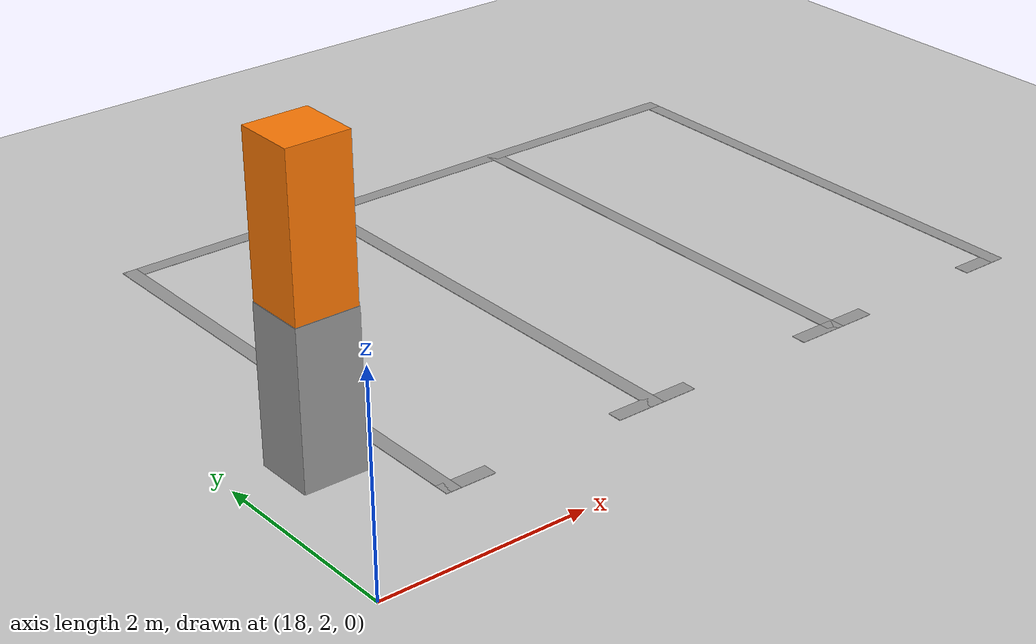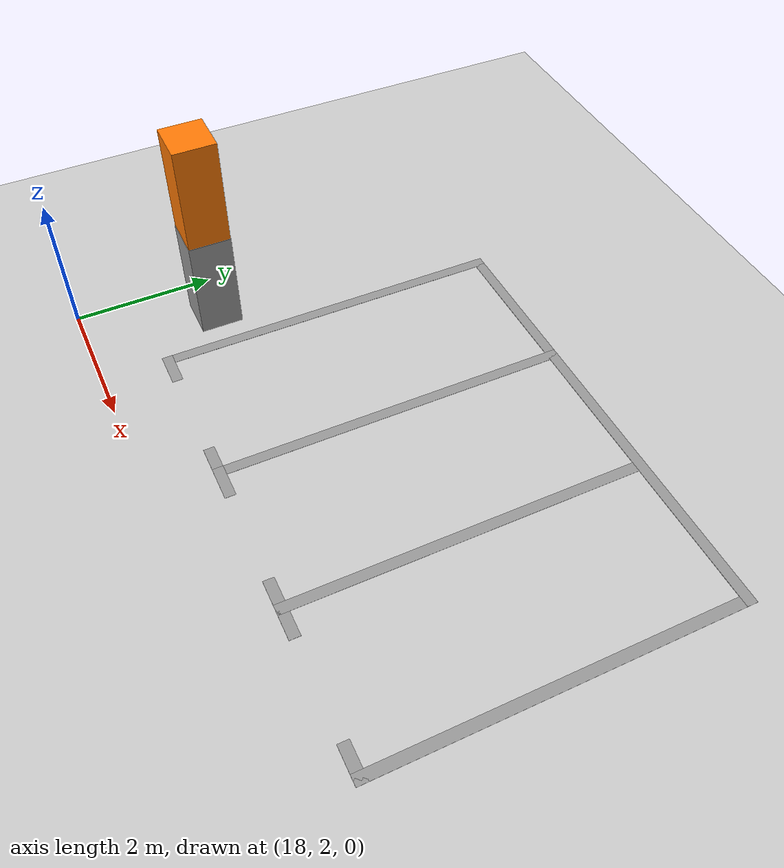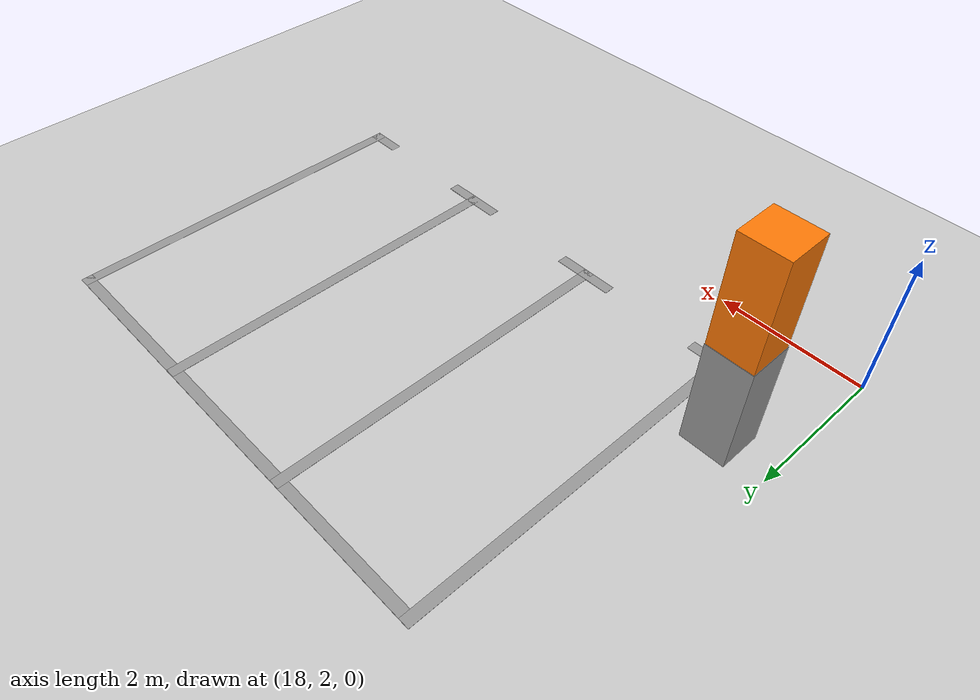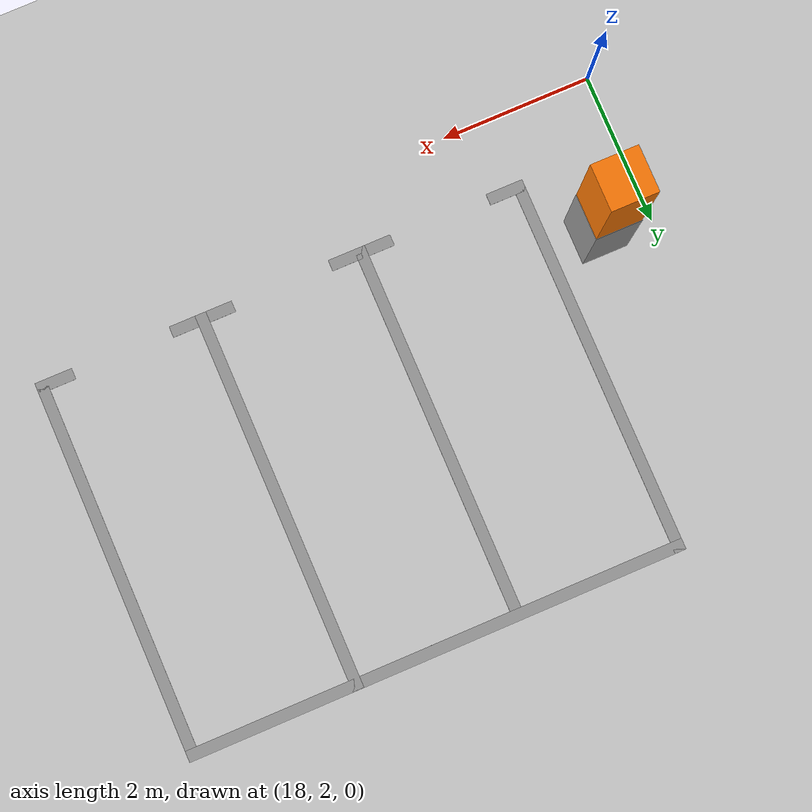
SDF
<sdf version="1.7">
 <world name="default">
  <model name="ground_plane">
   <static>1</static>
   <link name="link">
    <collision name="collision">
     <geometry><plane><normal>0 0 1</normal><size>100 100</size></plane></geometry>
     <surface><friction><ode><mu>100</mu><mu2>50</mu2></ode></friction></surface>
    </collision>
    <visual name="visual">
     <cast_shadows>0</cast_shadows>
     <geometry><plane><normal>0 0 1</normal><size>100 100</size></plane></geometry>
     <material>
      <script><uri>file://media/materials/scripts/gazebo.material</uri><name>Gazebo/Grey</name></script>
     </material>
    </visual>
   </link>
  </model>
  <model name="carport1_2_clone_1">
   <pose>22.1964 7.16418 0 0 -0 0</pose>
   <link name="Wall_105">
    <collision name="Wall_105_Collision">
     <geometry><box><size>0.61 0.6 1.5</size></box></geometry>
     <pose>0 0 0.75 0 -0 0</pose>
    </collision>
    <visual name="Wall_105_Visual">
     <pose>0 0 0.75 0 -0 0</pose>
     <geometry><box><size>0.61 0.6 1.5</size></box></geometry>
     <material>
      <script><uri>file://media/materials/scripts/gazebo.material</uri><name>Gazebo/Grey</name></script>
      <ambient>1 1 1 1</ambient>
     </material>
     <meta><layer>0</layer></meta>
    </visual>
    <pose>-3.47407 -3.2865 0 0 -0 0</pose>
   </link>
   <link name="Wall_116">
    <collision name="Wall_116_Collision">
     <geometry><box><size>5.1 0.15 0.005</size></box></geometry>
     <pose>0 0 0.0025 0 -0 0</pose>
    </collision>
    <visual name="Wall_116_Visual">
     <pose>0 0 0.0025 0 -0 0</pose>
     <geometry><box><size>5.1 0.15 0.005</size></box></geometry>
     <material>
      <script><uri>file://media/materials/scripts/gazebo.material</uri><name>Gazebo/Grey</name></script>
      <ambient>1 1 1 1</ambient>
     </material>
     <meta><layer>0</layer></meta>
    </visual>
    <pose>-2.82307 -1.7385 0 0 -0 1.5708</pose>
   </link>
   <link name="Wall_124">
    <collision name="Wall_124_Collision">
     <geometry><box><size>5.1 0.15 0.005</size></box></geometry>
     <pose>0 0 0.0025 0 -0 0</pose>
    </collision>
    <visual name="Wall_124_Visual">
     <pose>0 0 0.0025 0 -0 0</pose>
     <geometry><box><size>5.1 0.15 0.005</size></box></geometry>
     <material>
      <script><uri>file://media/materials/scripts/gazebo.material</uri><name>Gazebo/Grey</name></script>
      <ambient>1 1 1 1</ambient>
     </material>
     <meta><layer>0</layer></meta>
    </visual>
    <pose>3.70393 -1.7305 0 0 -0 1.5708</pose>
   </link>
   <link name="Wall_146">
    <collision name="Wall_146_Collision">
     <geometry><box><size>6.67711 0.15 0.005</size></box></geometry>
     <pose>0 0 0.0025 0 -0 0</pose>
    </collision>
    <visual name="Wall_146_Visual">
     <pose>0 0 0.0025 0 -0 0</pose>
     <geometry><box><size>6.67711 0.15 0.005</size></box></geometry>
     <material>
      <script><uri>file://media/materials/scripts/gazebo.material</uri><name>Gazebo/Grey</name></script>
      <ambient>1 1 1 1</ambient>
     </material>
     <meta><layer>0</layer></meta>
    </visual>
    <pose>0.440428 0.7405 0 0 -0 0.001226</pose>
   </link>
   <link name="Wall_168">
    <collision name="Wall_168_Collision">
     <geometry><box><size>5.1 0.15 0.005</size></box></geometry>
     <pose>0 0 0.0025 0 -0 0</pose>
    </collision>
    <visual name="Wall_168_Visual">
     <pose>0 0 0.0025 0 -0 0</pose>
     <geometry><box><size>5.1 0.15 0.005</size></box></geometry>
     <material>
      <script><uri>file://media/materials/scripts/gazebo.material</uri><name>Gazebo/Grey</name></script>
      <ambient>1 1 1 1</ambient>
     </material>
     <meta><layer>0</layer></meta>
    </visual>
    <pose>-0.64827 -1.73839 0 0 -0 1.57088</pose>
   </link>
   <link name="Wall_173">
    <collision name="Wall_173_Collision">
     <geometry><box><size>5.1 0.15 0.005</size></box></geometry>
     <pose>0 0 0.0025 0 -0 0</pose>
    </collision>
    <visual name="Wall_173_Visual">
     <pose>0 0 0.0025 0 -0 0</pose>
     <geometry><box><size>5.1 0.15 0.005</size></box></geometry>
     <material>
      <script><uri>file://media/materials/scripts/gazebo.material</uri><name>Gazebo/Grey</name></script>
      <ambient>1 1 1 1</ambient>
     </material>
     <meta><layer>0</layer></meta>
    </visual>
    <pose>1.52673 -1.73839 0 0 -0 1.57088</pose>
   </link>
   <link name="Wall_177">
    <collision name="Wall_177_Collision">
     <geometry><box><size>0.6 0.59 3</size></box></geometry>
     <pose>0 0 1.5 0 -0 0</pose>
    </collision>
    <visual name="Wall_177_Visual">
     <pose>0 0 1.5 0 -0 0</pose>
     <geometry><box><size>0.6 0.59 3</size></box></geometry>
     <material>
      <script><uri>file://media/materials/scripts/gazebo.material</uri><name>Gazebo/Grey</name></script>
      <ambient>0.996078 0.47451 0.0196078 1</ambient>
     </material>
     <meta><layer>0</layer></meta>
    </visual>
    <pose>-3.47407 -3.2865 0 0 -0 0</pose>
   </link>
   <link name="Wall_179">
    <collision name="Wall_179_Collision">
     <geometry><box><size>0.5 0.15 0.005</size></box></geometry>
     <pose>0 0 0.0025 0 -0 0</pose>
    </collision>
    <visual name="Wall_179_Visual">
     <pose>0 0 0.0025 0 -0 0</pose>
     <geometry><box><size>0.5 0.15 0.005</size></box></geometry>
     <material>
      <script><uri>file://media/materials/scripts/gazebo.material</uri><name>Gazebo/Grey</name></script>
      <ambient>1 1 1 1</ambient>
     </material>
     <meta><layer>0</layer></meta>
    </visual>
    <pose>-2.64807 -4.2135 0 0 -0 0</pose>
   </link>
   <link name="Wall_181">
    <collision name="Wall_181_Collision">
     <geometry><box><size>0.5 0.15 0.005</size></box></geometry>
     <pose>0 0 0.0025 0 -0 0</pose>
    </collision>
    <visual name="Wall_181_Visual">
     <pose>0 0 0.0025 0 -0 0</pose>
     <geometry><box><size>0.5 0.15 0.005</size></box></geometry>
     <material>
      <script><uri>file://media/materials/scripts/gazebo.material</uri><name>Gazebo/Grey</name></script>
      <ambient>1 1 1 1</ambient>
     </material>
     <meta><layer>0</layer></meta>
    </visual>
    <pose>-0.823072 -4.2135 0 0 -0 3.14159</pose>
   </link>
   <link name="Wall_183">
    <collision name="Wall_183_Collision">
     <geometry><box><size>0.5 0.15 0.005</size></box></geometry>
     <pose>0 0 0.0025 0 -0 0</pose>
    </collision>
    <visual name="Wall_183_Visual">
     <pose>0 0 0.0025 0 -0 0</pose>
     <geometry><box><size>0.5 0.15 0.005</size></box></geometry>
     <material>
      <script><uri>file://media/materials/scripts/gazebo.material</uri><name>Gazebo/Grey</name></script>
      <ambient>1 1 1 1</ambient>
     </material>
     <meta><layer>0</layer></meta>
    </visual>
    <pose>-0.473072 -4.2135 0 0 -0 0</pose>
   </link>
   <link name="Wall_185">
    <collision name="Wall_185_Collision">
     <geometry><box><size>0.5 0.15 0.005</size></box></geometry>
     <pose>0 0 0.0025 0 -0 0</pose>
    </collision>
    <visual name="Wall_185_Visual">
     <pose>0 0 0.0025 0 -0 0</pose>
     <geometry><box><size>0.5 0.15 0.005</size></box></geometry>
     <material>
      <script><uri>file://media/materials/scripts/gazebo.material</uri><name>Gazebo/Grey</name></script>
      <ambient>1 1 1 1</ambient>
     </material>
     <meta><layer>0</layer></meta>
    </visual>
    <pose>1.35193 -4.2135 0 0 -0 3.14159</pose>
   </link>
   <link name="Wall_187">
    <collision name="Wall_187_Collision">
     <geometry><box><size>0.5 0.15 0.005</size></box></geometry>
     <pose>0 0 0.0025 0 -0 0</pose>
    </collision>
    <visual name="Wall_187_Visual">
     <pose>0 0 0.0025 0 -0 0</pose>
     <geometry><box><size>0.5 0.15 0.005</size></box></geometry>
     <material>
      <script><uri>file://media/materials/scripts/gazebo.material</uri><name>Gazebo/Grey</name></script>
      <ambient>1 1 1 1</ambient>
     </material>
     <meta><layer>0</layer></meta>
    </visual>
    <pose>1.70193 -4.2135 0 0 -0 0</pose>
   </link>
   <link name="Wall_189">
    <collision name="Wall_189_Collision">
     <geometry><box><size>0.5 0.15 0.005</size></box></geometry>
     <pose>0 0 0.0025 0 -0 0</pose>
    </collision>
    <visual name="Wall_189_Visual">
     <pose>0 0 0.0025 0 -0 0</pose>
     <geometry><box><size>0.5 0.15 0.005</size></box></geometry>
     <material>
      <script><uri>file://media/materials/scripts/gazebo.material</uri><name>Gazebo/Grey</name></script>
      <ambient>1 1 1 1</ambient>
     </material>
     <meta><layer>0</layer></meta>
    </visual>
    <pose>3.52893 -4.2055 0 0 -0 3.14159</pose>
   </link>
   <static>1</static>
  </model>
 </world>
</sdf>
